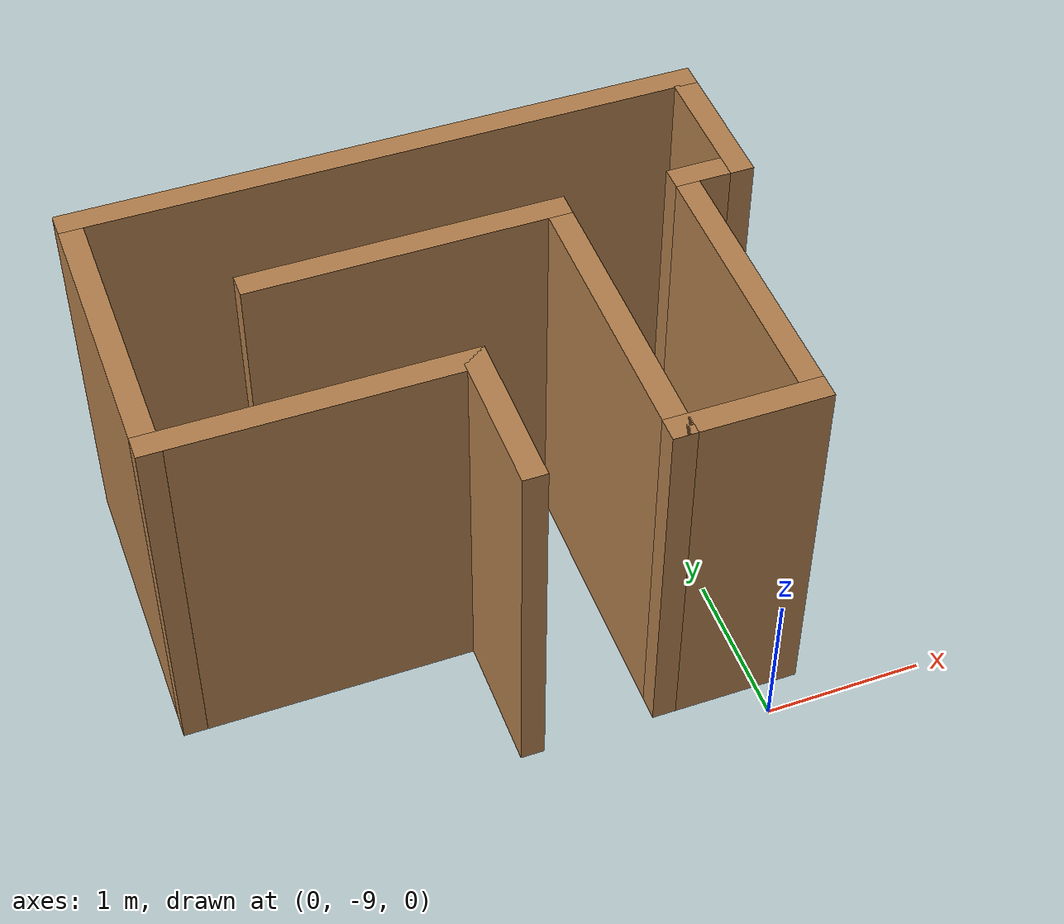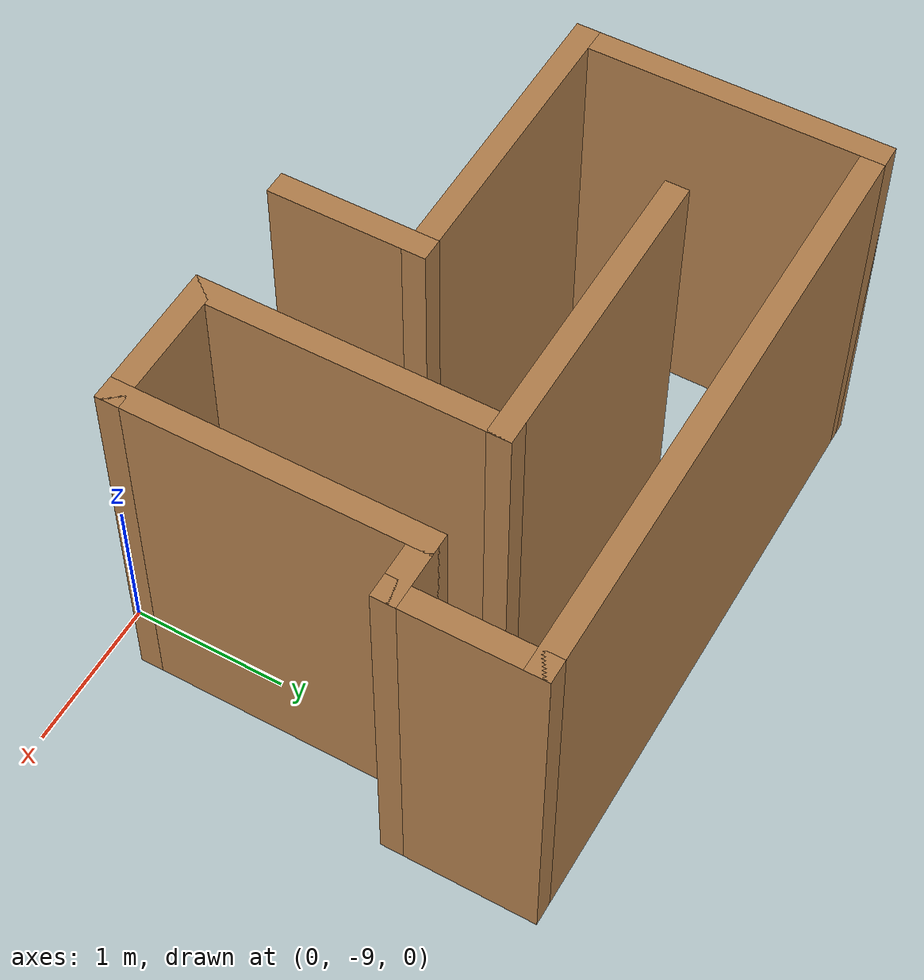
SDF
<?xml version='1.0'?>
<sdf version='1.6'>
  <model name='maze1'>
    <pose frame=''>-1.38366 -7.37524 0 0 -0 0</pose>
    <link name='Wall_28'>
      <collision name='Wall_28_Collision'>
        <geometry>
          <box>
            <size>2 0.15 2.5</size>
          </box>
        </geometry>
        <pose frame=''>0 0 1.25 0 -0 0</pose>
      </collision>
      <visual name='Wall_28_Visual'>
        <pose frame=''>0 0 1.25 0 -0 0</pose>
        <geometry>
          <box>
            <size>2 0.15 2.5</size>
          </box>
        </geometry>
        <material>
          <script>
            <uri>file://media/materials/scripts/gazebo.material</uri>
            <name>Gazebo/Wood</name>
          </script>
          <ambient>1 1 1 1</ambient>
        </material>
      </visual>
      <pose frame=''>0.775 -0.425 0 0 -0 1.5708</pose>
    </link>
    <link name='Wall_29'>
      <collision name='Wall_29_Collision'>
        <geometry>
          <box>
            <size>2 0.15 2.5</size>
          </box>
        </geometry>
        <pose frame=''>0 0 1.25 0 -0 0</pose>
      </collision>
      <visual name='Wall_29_Visual'>
        <pose frame=''>0 0 1.25 0 -0 0</pose>
        <geometry>
          <box>
            <size>2 0.15 2.5</size>
          </box>
        </geometry>
        <material>
          <script>
            <uri>file://media/materials/scripts/gazebo.material</uri>
            <name>Gazebo/Wood</name>
          </script>
          <ambient>1 1 1 1</ambient>
        </material>
      </visual>
      <pose frame=''>-0.15 0.5 0 0 -0 3.14159</pose>
    </link>
    <link name='Wall_34'>
      <collision name='Wall_34_Collision'>
        <geometry>
          <box>
            <size>1 0.15 2.5</size>
          </box>
        </geometry>
        <pose frame=''>0 0 1.25 0 -0 0</pose>
      </collision>
      <visual name='Wall_34_Visual'>
        <pose frame=''>0 0 1.25 0 -0 0</pose>
        <geometry>
          <box>
            <size>1 0.15 2.5</size>
          </box>
        </geometry>
        <material>
          <script>
            <uri>file://media/materials/scripts/gazebo.material</uri>
            <name>Gazebo/Wood</name>
          </script>
          <ambient>1 1 1 1</ambient>
        </material>
      </visual>
      <pose frame=''>-0.075 -0.925 0 0 -0 1.5708</pose>
    </link>
    <link name='Wall_35'>
      <collision name='Wall_35_Collision'>
        <geometry>
          <box>
            <size>2 0.15 2.5</size>
          </box>
        </geometry>
        <pose frame=''>0 0 1.25 0 -0 0</pose>
      </collision>
      <visual name='Wall_35_Visual'>
        <pose frame=''>0 0 1.25 0 -0 0</pose>
        <geometry>
          <box>
            <size>2 0.15 2.5</size>
          </box>
        </geometry>
        <material>
          <script>
            <uri>file://media/materials/scripts/gazebo.material</uri>
            <name>Gazebo/Wood</name>
          </script>
          <ambient>1 1 1 1</ambient>
        </material>
      </visual>
      <pose frame=''>-1 -0.5 0 0 -0 3.14159</pose>
    </link>
    <link name='Wall_36'>
      <collision name='Wall_36_Collision'>
        <geometry>
          <box>
            <size>2 0.15 2.5</size>
          </box>
        </geometry>
        <pose frame=''>0 0 1.25 0 -0 0</pose>
      </collision>
      <visual name='Wall_36_Visual'>
        <pose frame=''>0 0 1.25 0 -0 0</pose>
        <geometry>
          <box>
            <size>2 0.15 2.5</size>
          </box>
        </geometry>
        <material>
          <script>
            <uri>file://media/materials/scripts/gazebo.material</uri>
            <name>Gazebo/Wood</name>
          </script>
          <ambient>1 1 1 1</ambient>
        </material>
      </visual>
      <pose frame=''>-1.925 0.425 0 0 -0 1.5708</pose>
    </link>
    <link name='Wall_37'>
      <collision name='Wall_37_Collision'>
        <geometry>
          <box>
            <size>4 0.15 2.5</size>
          </box>
        </geometry>
        <pose frame=''>0 0 1.25 0 -0 0</pose>
      </collision>
      <visual name='Wall_37_Visual'>
        <pose frame=''>0 0 1.25 0 -0 0</pose>
        <geometry>
          <box>
            <size>4 0.15 2.5</size>
          </box>
        </geometry>
        <material>
          <script>
            <uri>file://media/materials/scripts/gazebo.material</uri>
            <name>Gazebo/Wood</name>
          </script>
          <ambient>1 1 1 1</ambient>
        </material>
      </visual>
      <pose frame=''>0 1.35 0 0 -0 0</pose>
    </link>
    <link name='Wall_38'>
      <collision name='Wall_38_Collision'>
        <geometry>
          <box>
            <size>1 0.15 2.5</size>
          </box>
        </geometry>
        <pose frame=''>0 0 1.25 0 -0 0</pose>
      </collision>
      <visual name='Wall_38_Visual'>
        <pose frame=''>0 0 1.25 0 -0 0</pose>
        <geometry>
          <box>
            <size>1 0.15 2.5</size>
          </box>
        </geometry>
        <material>
          <script>
            <uri>file://media/materials/scripts/gazebo.material</uri>
            <name>Gazebo/Wood</name>
          </script>
          <ambient>1 1 1 1</ambient>
        </material>
      </visual>
      <pose frame=''>1.925 0.925 0 0 0 -1.5708</pose>
    </link>
    <link name='Wall_39'>
      <collision name='Wall_39_Collision'>
        <geometry>
          <box>
            <size>0.5 0.15 2.5</size>
          </box>
        </geometry>
        <pose frame=''>0 0 1.25 0 -0 0</pose>
      </collision>
      <visual name='Wall_39_Visual'>
        <pose frame=''>0 0 1.25 0 -0 0</pose>
        <geometry>
          <box>
            <size>0.5 0.15 2.5</size>
          </box>
        </geometry>
        <material>
          <script>
            <uri>file://media/materials/scripts/gazebo.material</uri>
            <name>Gazebo/Wood</name>
          </script>
          <ambient>1 1 1 1</ambient>
        </material>
      </visual>
      <pose frame=''>1.75 0.5 0 0 -0 3.14159</pose>
    </link>
    <link name='Wall_40'>
      <collision name='Wall_40_Collision'>
        <geometry>
          <box>
            <size>2 0.15 2.5</size>
          </box>
        </geometry>
        <pose frame=''>0 0 1.25 0 -0 0</pose>
      </collision>
      <visual name='Wall_40_Visual'>
        <pose frame=''>0 0 1.25 0 -0 0</pose>
        <geometry>
          <box>
            <size>2 0.15 2.5</size>
          </box>
        </geometry>
        <material>
          <script>
            <uri>file://media/materials/scripts/gazebo.material</uri>
            <name>Gazebo/Wood</name>
          </script>
          <ambient>1 1 1 1</ambient>
        </material>
      </visual>
      <pose frame=''>1.575 -0.425 0 0 0 -1.5708</pose>
    </link>
    <link name='Wall_41'>
      <collision name='Wall_41_Collision'>
        <geometry>
          <box>
            <size>0.95 0.15 2.5</size>
          </box>
        </geometry>
        <pose frame=''>0 0 1.25 0 -0 0</pose>
      </collision>
      <visual name='Wall_41_Visual'>
        <pose frame=''>0 0 1.25 0 -0 0</pose>
        <geometry>
          <box>
            <size>0.95 0.15 2.5</size>
          </box>
        </geometry>
        <material>
          <script>
            <uri>file://media/materials/scripts/gazebo.material</uri>
            <name>Gazebo/Wood</name>
          </script>
          <ambient>1 1 1 1</ambient>
        </material>
      </visual>
      <pose frame=''>1.175 -1.35 0 0 -0 3.14159</pose>
    </link>
    <static>1</static>
  </model>
</sdf>
